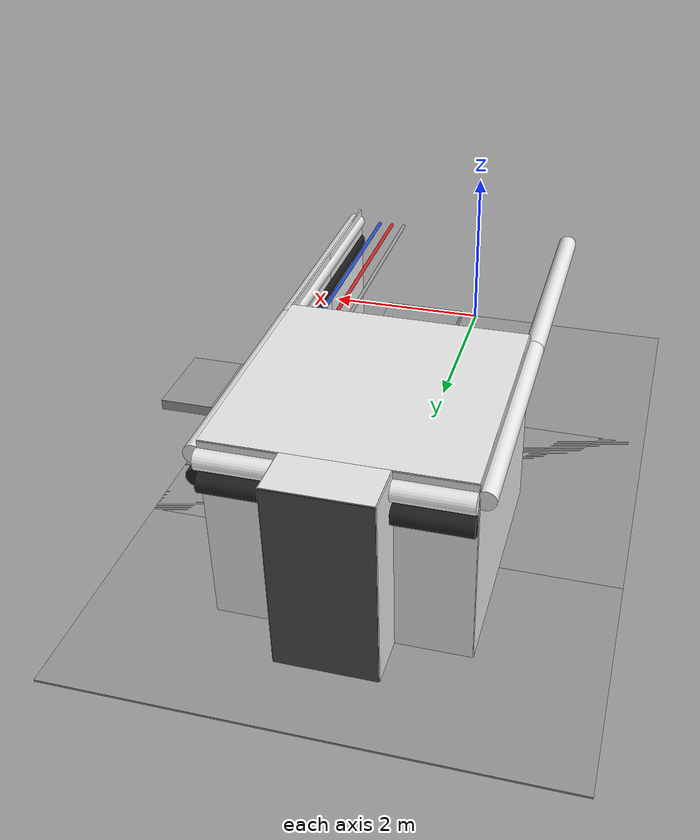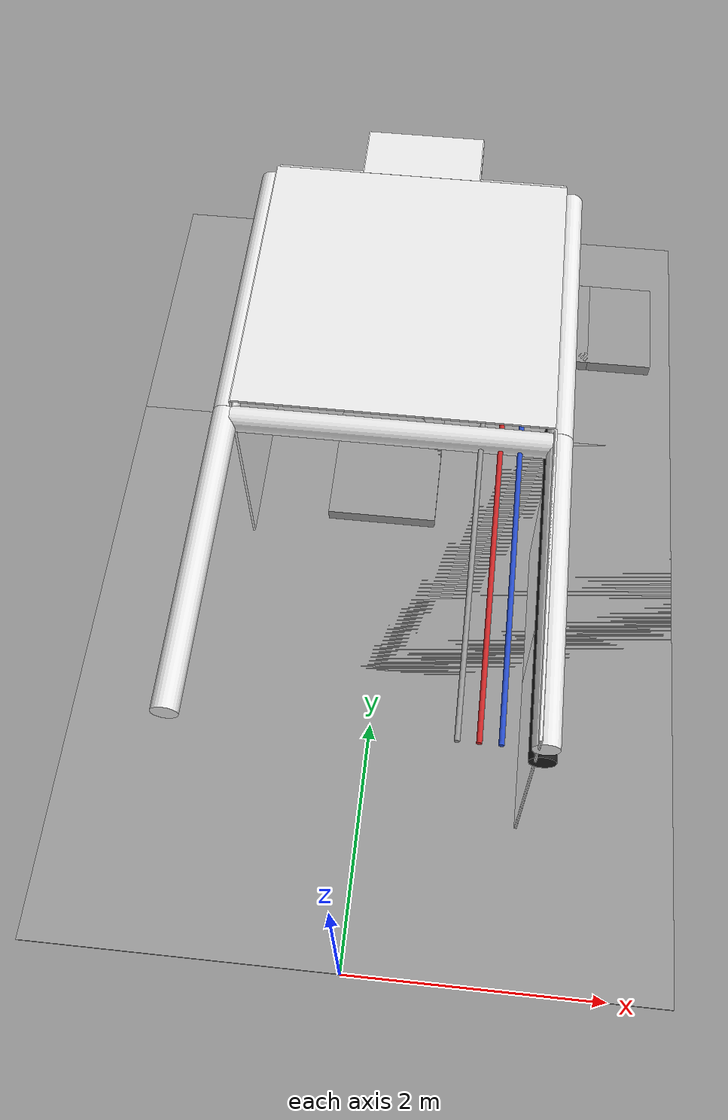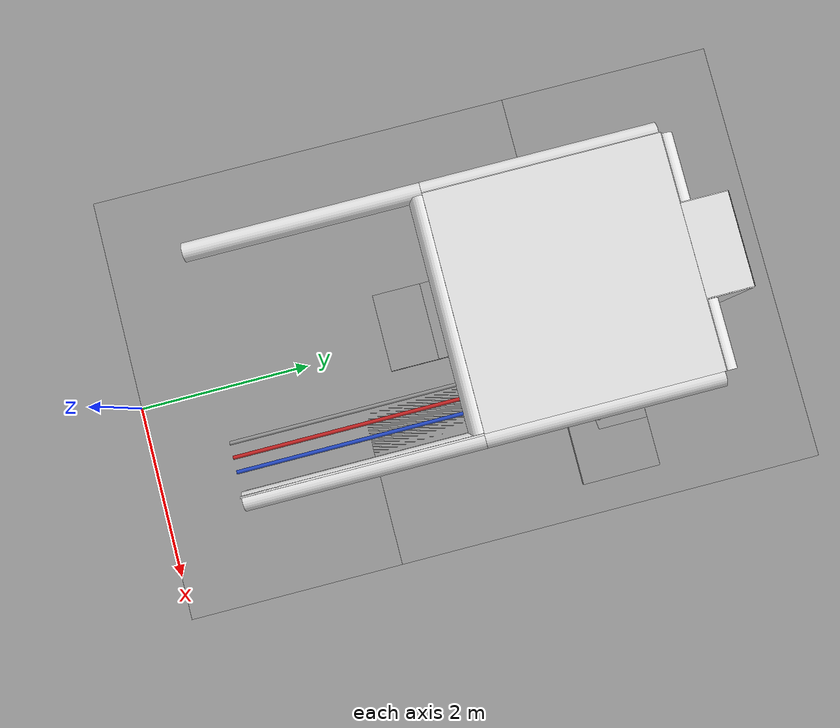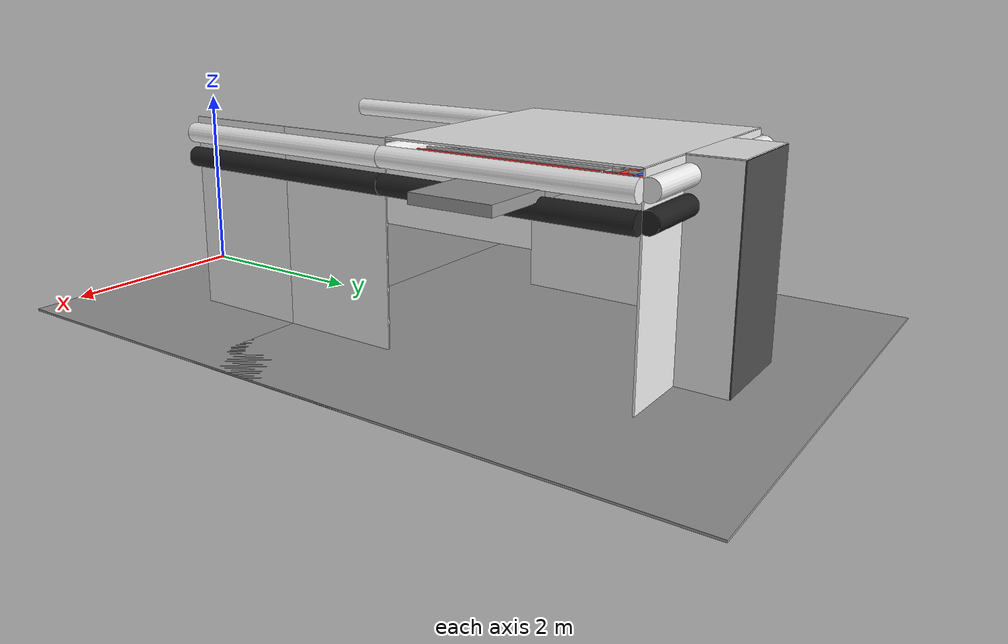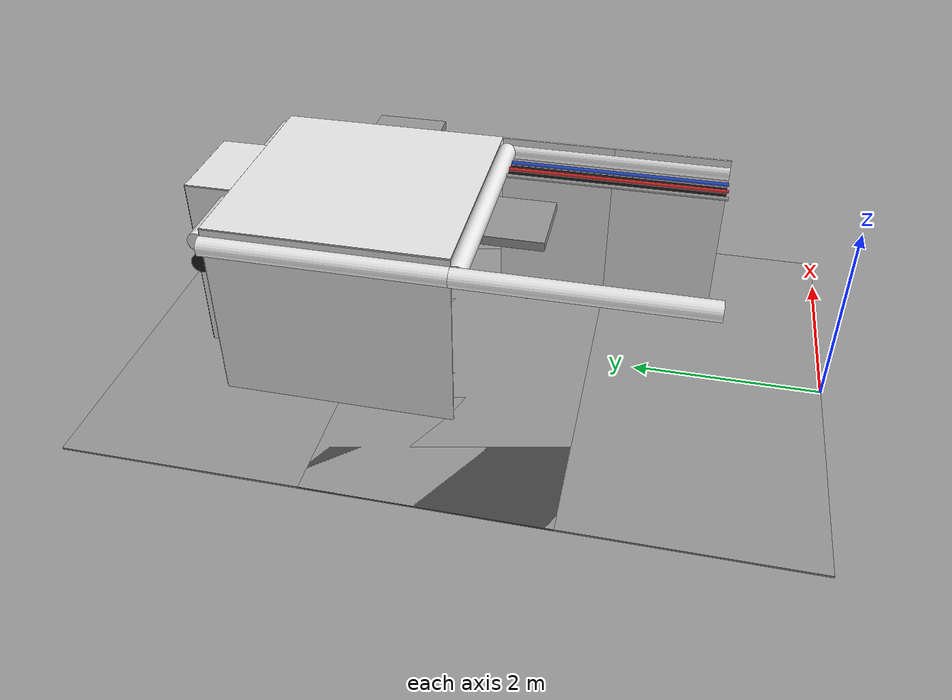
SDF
<sdf version="1.6">
 <world name="default">
  <model name="wall_right_0_1_0_1">
   <static>1</static>
   <pose>1.25 2.5 1.0 0.0 0.0 1.57</pose>
   <link name="link">
    <collision name="collision"><geometry><box><size>2.5 0.02 2.0</size></box></geometry></collision>
    <visual name="visual">
     <material>
      <script><name>Gazebo/White</name><uri>file://media/materials/scripts/gazebo.material</uri></script>
     </material>
     <geometry><box><size>2.5 0.02 2.0</size></box></geometry>
    </visual>
   </link>
  </model>
  <model name="ceiling_1_0_1_2_1">
   <pose>0.0 3.5 1.7 0.0 0.0 0.0</pose>
   <link name="link_1">
    <visual name="visual">
     <geometry><box><size>0.8 1 0.1</size></box></geometry>
     <material>
      <script><uri>file://media/materials/scripts/gazebo.material</uri><name>Gazebo/Grey</name></script>
     </material>
    </visual>
    <collision name="collision"><geometry><box><size>0.8 1 0.1</size></box></geometry></collision>
   </link>
   <static>1</static>
  </model>
  <model name="white_pipe_left_0_1_0_1">
   <static>1</static>
   <pose>0.0 2.5 1.84 0.0 0.0 0.0</pose>
   <link name="link_0">
    <visual name="visual">
     <pose>-1.3 0 0 1.57 0 0</pose>
     <geometry><cylinder><radius>0.1</radius><length>2.5</length></cylinder></geometry>
     <material>
      <script><uri>file://media/materials/scripts/gazebo.material</uri><name>Gazebo/White</name></script>
     </material>
    </visual>
    <collision name="collision">
     <pose>-1.3 0 0 1.57 0 0</pose>
     <geometry><cylinder><radius>0.1</radius><length>2.5</length></cylinder></geometry>
    </collision>
   </link>
  </model>
  <model name="white_pipe_right_0_1_0_1">
   <static>1</static>
   <pose>0.0 2.5 1.84 0.0 0.0 0.0</pose>
   <link name="link_0">
    <visual name="visual">
     <pose>1.3 0 0 1.57 0 0</pose>
     <geometry><cylinder><radius>0.1</radius><length>2.5</length></cylinder></geometry>
     <material>
      <script><uri>file://media/materials/scripts/gazebo.material</uri><name>Gazebo/White</name></script>
     </material>
    </visual>
    <collision name="collision">
     <pose>1.3 0 0 1.57 0 0</pose>
     <geometry><cylinder><radius>0.1</radius><length>2.5</length></cylinder></geometry>
    </collision>
   </link>
  </model>
  <model name="black_pipe_right_0_1_0_1">
   <static>1</static>
   <pose>0.0 2.5 1.84 0.0 0.0 0.0</pose>
   <link name="link_0">
    <visual name="visual">
     <pose>1.3 0 -0.25 1.57 0 0</pose>
     <geometry><cylinder><radius>0.1</radius><length>2.5</length></cylinder></geometry>
     <material>
      <script><uri>file://media/materials/scripts/gazebo.material</uri><name>Gazebo/Black</name></script>
     </material>
    </visual>
    <collision name="collision">
     <pose>1.3 0 -0.25 1.57 0 0</pose>
     <geometry><cylinder><radius>0.1</radius><length>2.5</length></cylinder></geometry>
    </collision>
   </link>
  </model>
  <model name="grey_pipe_right_0_1_0_1">
   <static>1</static>
   <pose>0.0 2.5 1.84 0.0 0.0 0.0</pose>
   <link name="link_0">
    <visual name="visual">
     <pose>0.7 0 0 1.57 0 0</pose>
     <geometry><cylinder><radius>0.02</radius><length>2.5</length></cylinder></geometry>
     <material>
      <script><uri>file://media/materials/scripts/gazebo.material</uri><name>Gazebo/Grey</name></script>
     </material>
    </visual>
    <collision name="collision">
     <pose>0.7 0 0 1.57 0 0</pose>
     <geometry><cylinder><radius>0.02</radius><length>2.5</length></cylinder></geometry>
    </collision>
   </link>
  </model>
  <model name="red_pipe_right_0_1_0_1">
   <static>1</static>
   <pose>0.0 2.5 1.84 0.0 0.0 0.0</pose>
   <link name="link_0">
    <visual name="visual">
     <pose>0.85 0 0 1.57 0 0</pose>
     <geometry><cylinder><radius>0.02</radius><length>2.5</length></cylinder></geometry>
     <material>
      <script><uri>file://media/materials/scripts/gazebo.material</uri><name>Gazebo/Red</name></script>
     </material>
    </visual>
    <collision name="collision">
     <pose>0.85 0 0 1.57 0 0</pose>
     <geometry><cylinder><radius>0.02</radius><length>2.5</length></cylinder></geometry>
    </collision>
   </link>
  </model>
  <model name="blue_pipe_right_0_1_0_1">
   <static>1</static>
   <pose>0.0 2.5 1.84 0.0 0.0 0.0</pose>
   <link name="link_0">
    <visual name="visual">
     <pose>1 0 0 1.57 0 0</pose>
     <geometry><cylinder><radius>0.02</radius><length>2.5</length></cylinder></geometry>
     <material>
      <script><uri>file://media/materials/scripts/gazebo.material</uri><name>Gazebo/Blue</name></script>
     </material>
    </visual>
    <collision name="collision">
     <pose>1 0 0 1.57 0 0</pose>
     <geometry><cylinder><radius>0.02</radius><length>2.5</length></cylinder></geometry>
    </collision>
   </link>
  </model>
  <model name="wall_bottom_0_1_0_1">
   <static>1</static>
   <pose>0.0 2.5 0.0 0.0 0.0 0.0</pose>
   <link name="link">
    <collision name="collision"><geometry><box><size>5.0 5.0 0.02</size></box></geometry></collision>
    <visual name="visual">
     <material>
      <script><name>Gazebo/Grey</name><uri>file://media/materials/scripts/gazebo.material</uri></script>
     </material>
     <geometry><box><size>5.0 5.0 0.02</size></box></geometry>
    </visual>
   </link>
  </model>
  <model name="wall_left_0_2_0_2">
   <static>1</static>
   <pose>-1.25 5.0 1.0 0.0 0.0 1.57</pose>
   <link name="link">
    <collision name="collision"><geometry><box><size>2.5 0.02 2.0</size></box></geometry></collision>
    <visual name="visual">
     <material>
      <script><name>Gazebo/White</name><uri>file://media/materials/scripts/gazebo.material</uri></script>
     </material>
     <geometry><box><size>2.5 0.02 2.0</size></box></geometry>
    </visual>
   </link>
  </model>
  <model name="wall_top_0_2_0_2">
   <static>1</static>
   <pose>0.0 5.0 2.0 1.57 0.0 0.0</pose>
   <link name="link">
    <collision name="collision"><geometry><box><size>2.5 0.02 2.5</size></box></geometry></collision>
    <visual name="visual">
     <material>
      <script><name>Gazebo/White</name><uri>file://media/materials/scripts/gazebo.material</uri></script>
     </material>
     <geometry><box><size>2.5 0.02 2.5</size></box></geometry>
    </visual>
   </link>
  </model>
  <model name="ceiling_1_0_2_0_2">
   <pose>0.0 4.0 1.7 0.0 0.0 0.0</pose>
   <link name="link_1">
    <visual name="visual">
     <geometry><box><size>0.8 1 0.1</size></box></geometry>
     <material>
      <script><uri>file://media/materials/scripts/gazebo.material</uri><name>Gazebo/Grey</name></script>
     </material>
    </visual>
    <collision name="collision"><geometry><box><size>0.8 1 0.1</size></box></geometry></collision>
   </link>
   <static>1</static>
  </model>
  <model name="ceiling_1_0_2_1_2">
   <pose>1.0 5.0 1.7 0.0 0.0 1.57</pose>
   <link name="link_1">
    <visual name="visual">
     <geometry><box><size>0.8 1 0.1</size></box></geometry>
     <material>
      <script><uri>file://media/materials/scripts/gazebo.material</uri><name>Gazebo/Grey</name></script>
     </material>
    </visual>
    <collision name="collision"><geometry><box><size>0.8 1 0.1</size></box></geometry></collision>
   </link>
   <static>1</static>
  </model>
  <model name="white_pipe_left_0_2_0_2">
   <static>1</static>
   <pose>0.0 5.0 1.84 0.0 0.0 0.0</pose>
   <link name="link_0">
    <visual name="visual">
     <pose>-1.3 0 0 1.57 0 0</pose>
     <geometry><cylinder><radius>0.1</radius><length>2.5</length></cylinder></geometry>
     <material>
      <script><uri>file://media/materials/scripts/gazebo.material</uri><name>Gazebo/White</name></script>
     </material>
    </visual>
    <collision name="collision">
     <pose>-1.3 0 0 1.57 0 0</pose>
     <geometry><cylinder><radius>0.1</radius><length>2.5</length></cylinder></geometry>
    </collision>
   </link>
  </model>
  <model name="white_pipe_right_0_2_0_2">
   <static>1</static>
   <pose>0.0 5.0 1.84 0.0 0.0 0.0</pose>
   <link name="link_0">
    <visual name="visual">
     <pose>1.3 0 0 1.57 0 0</pose>
     <geometry><cylinder><radius>0.1</radius><length>2.5</length></cylinder></geometry>
     <material>
      <script><uri>file://media/materials/scripts/gazebo.material</uri><name>Gazebo/White</name></script>
     </material>
    </visual>
    <collision name="collision">
     <pose>1.3 0 0 1.57 0 0</pose>
     <geometry><cylinder><radius>0.1</radius><length>2.5</length></cylinder></geometry>
    </collision>
   </link>
  </model>
  <model name="black_pipe_right_0_2_0_2">
   <static>1</static>
   <pose>0.0 5.0 1.84 0.0 0.0 0.0</pose>
   <link name="link_0">
    <visual name="visual">
     <pose>1.3 0 -0.25 1.57 0 0</pose>
     <geometry><cylinder><radius>0.1</radius><length>2.5</length></cylinder></geometry>
     <material>
      <script><uri>file://media/materials/scripts/gazebo.material</uri><name>Gazebo/Black</name></script>
     </material>
    </visual>
    <collision name="collision">
     <pose>1.3 0 -0.25 1.57 0 0</pose>
     <geometry><cylinder><radius>0.1</radius><length>2.5</length></cylinder></geometry>
    </collision>
   </link>
  </model>
  <model name="grey_pipe_right_0_2_0_2">
   <static>1</static>
   <pose>0.0 5.0 1.84 0.0 0.0 0.0</pose>
   <link name="link_0">
    <visual name="visual">
     <pose>0.7 0 0 1.57 0 0</pose>
     <geometry><cylinder><radius>0.02</radius><length>2.5</length></cylinder></geometry>
     <material>
      <script><uri>file://media/materials/scripts/gazebo.material</uri><name>Gazebo/Grey</name></script>
     </material>
    </visual>
    <collision name="collision">
     <pose>0.7 0 0 1.57 0 0</pose>
     <geometry><cylinder><radius>0.02</radius><length>2.5</length></cylinder></geometry>
    </collision>
   </link>
  </model>
  <model name="red_pipe_right_0_2_0_2">
   <static>1</static>
   <pose>0.0 5.0 1.84 0.0 0.0 0.0</pose>
   <link name="link_0">
    <visual name="visual">
     <pose>0.85 0 0 1.57 0 0</pose>
     <geometry><cylinder><radius>0.02</radius><length>2.5</length></cylinder></geometry>
     <material>
      <script><uri>file://media/materials/scripts/gazebo.material</uri><name>Gazebo/Red</name></script>
     </material>
    </visual>
    <collision name="collision">
     <pose>0.85 0 0 1.57 0 0</pose>
     <geometry><cylinder><radius>0.02</radius><length>2.5</length></cylinder></geometry>
    </collision>
   </link>
  </model>
  <model name="blue_pipe_right_0_2_0_2">
   <static>1</static>
   <pose>0.0 5.0 1.84 0.0 0.0 0.0</pose>
   <link name="link_0">
    <visual name="visual">
     <pose>1 0 0 1.57 0 0</pose>
     <geometry><cylinder><radius>0.02</radius><length>2.5</length></cylinder></geometry>
     <material>
      <script><uri>file://media/materials/scripts/gazebo.material</uri><name>Gazebo/Blue</name></script>
     </material>
    </visual>
    <collision name="collision">
     <pose>1 0 0 1.57 0 0</pose>
     <geometry><cylinder><radius>0.02</radius><length>2.5</length></cylinder></geometry>
    </collision>
   </link>
  </model>
  <model name="white_pipe_left_1_0_2_0_2">
   <static>1</static>
   <pose>0.0 5.0 1.84 0.0 0.0 1.57</pose>
   <link name="link_0">
    <visual name="visual">
     <pose>-1.3 0 0 1.57 0 0</pose>
     <geometry><cylinder><radius>0.1</radius><length>2.5</length></cylinder></geometry>
     <material>
      <script><uri>file://media/materials/scripts/gazebo.material</uri><name>Gazebo/White</name></script>
     </material>
    </visual>
    <collision name="collision">
     <pose>-1.3 0 0 1.57 0 0</pose>
     <geometry><cylinder><radius>0.1</radius><length>2.5</length></cylinder></geometry>
    </collision>
   </link>
  </model>
  <model name="white_pipe_right_1_0_2_0_2">
   <static>1</static>
   <pose>0.0 5.0 1.84 0.0 0.0 1.57</pose>
   <link name="link_0">
    <visual name="visual">
     <pose>1.3 0 0 1.57 0 0</pose>
     <geometry><cylinder><radius>0.1</radius><length>2.5</length></cylinder></geometry>
     <material>
      <script><uri>file://media/materials/scripts/gazebo.material</uri><name>Gazebo/White</name></script>
     </material>
    </visual>
    <collision name="collision">
     <pose>1.3 0 0 1.57 0 0</pose>
     <geometry><cylinder><radius>0.1</radius><length>2.5</length></cylinder></geometry>
    </collision>
   </link>
  </model>
  <model name="black_pipe_right_1_0_2_0_2">
   <static>1</static>
   <pose>0.0 5.0 1.84 0.0 0.0 1.57</pose>
   <link name="link_0">
    <visual name="visual">
     <pose>1.3 0 -0.25 1.57 0 0</pose>
     <geometry><cylinder><radius>0.1</radius><length>2.5</length></cylinder></geometry>
     <material>
      <script><uri>file://media/materials/scripts/gazebo.material</uri><name>Gazebo/Black</name></script>
     </material>
    </visual>
    <collision name="collision">
     <pose>1.3 0 -0.25 1.57 0 0</pose>
     <geometry><cylinder><radius>0.1</radius><length>2.5</length></cylinder></geometry>
    </collision>
   </link>
  </model>
  <model name="grey_pipe_right_1_0_2_0_2">
   <static>1</static>
   <pose>0.0 5.0 1.84 0.0 0.0 1.57</pose>
   <link name="link_0">
    <visual name="visual">
     <pose>0.7 0 0 1.57 0 0</pose>
     <geometry><cylinder><radius>0.02</radius><length>2.5</length></cylinder></geometry>
     <material>
      <script><uri>file://media/materials/scripts/gazebo.material</uri><name>Gazebo/Grey</name></script>
     </material>
    </visual>
    <collision name="collision">
     <pose>0.7 0 0 1.57 0 0</pose>
     <geometry><cylinder><radius>0.02</radius><length>2.5</length></cylinder></geometry>
    </collision>
   </link>
  </model>
  <model name="red_pipe_right_1_0_2_0_2">
   <static>1</static>
   <pose>0.0 5.0 1.84 0.0 0.0 1.57</pose>
   <link name="link_0">
    <visual name="visual">
     <pose>0.85 0 0 1.57 0 0</pose>
     <geometry><cylinder><radius>0.02</radius><length>2.5</length></cylinder></geometry>
     <material>
      <script><uri>file://media/materials/scripts/gazebo.material</uri><name>Gazebo/Red</name></script>
     </material>
    </visual>
    <collision name="collision">
     <pose>0.85 0 0 1.57 0 0</pose>
     <geometry><cylinder><radius>0.02</radius><length>2.5</length></cylinder></geometry>
    </collision>
   </link>
  </model>
  <model name="blue_pipe_right_1_0_2_0_2">
   <static>1</static>
   <pose>0.0 5.0 1.84 0.0 0.0 1.57</pose>
   <link name="link_0">
    <visual name="visual">
     <pose>1 0 0 1.57 0 0</pose>
     <geometry><cylinder><radius>0.02</radius><length>2.5</length></cylinder></geometry>
     <material>
      <script><uri>file://media/materials/scripts/gazebo.material</uri><name>Gazebo/Blue</name></script>
     </material>
    </visual>
    <collision name="collision">
     <pose>1 0 0 1.57 0 0</pose>
     <geometry><cylinder><radius>0.02</radius><length>2.5</length></cylinder></geometry>
    </collision>
   </link>
  </model>
  <model name="wall_front_front_left_0_2_0_2">
   <static>1</static>
   <pose>0.875 6.25 1.0 0.0 0.0 0.0</pose>
   <link name="link">
    <collision name="collision"><geometry><box><size>0.75 0.02 2.0</size></box></geometry></collision>
    <visual name="visual">
     <material>
      <script><name>Gazebo/White</name><uri>file://media/materials/scripts/gazebo.material</uri></script>
     </material>
     <geometry><box><size>0.75 0.02 2.0</size></box></geometry>
    </visual>
   </link>
  </model>
  <model name="wall_front_front_right_0_2_0_2">
   <static>1</static>
   <pose>-0.875 6.25 1.0 0.0 0.0 0.0</pose>
   <link name="link">
    <collision name="collision"><geometry><box><size>0.75 0.02 2.0</size></box></geometry></collision>
    <visual name="visual">
     <material>
      <script><name>Gazebo/White</name><uri>file://media/materials/scripts/gazebo.material</uri></script>
     </material>
     <geometry><box><size>0.75 0.02 2.0</size></box></geometry>
    </visual>
   </link>
  </model>
  <model name="wall_front_front_up_0_2_0_2">
   <static>1</static>
   <pose>0.0 6.25 2.0 0.0 0.0 0.0</pose>
   <link name="link">
    <collision name="collision"><geometry><box><size>1.0 0.02 0.001</size></box></geometry></collision>
    <visual name="visual">
     <material>
      <script><name>Gazebo/White</name><uri>file://media/materials/scripts/gazebo.material</uri></script>
     </material>
     <geometry><box><size>1.0 0.02 0.001</size></box></geometry>
    </visual>
   </link>
  </model>
  <model name="wall_front_inside_back_0_2_0_2">
   <static>1</static>
   <pose>0.0 6.75 1.0 0.0 0.0 0.0</pose>
   <link name="link">
    <collision name="collision"><geometry><box><size>1 0.02 2</size></box></geometry></collision>
    <visual name="visual">
     <material>
      <script><name>Gazebo/DarkGrey</name><uri>file://media/materials/scripts/gazebo.material</uri></script>
     </material>
     <geometry><box><size>1 0.02 2</size></box></geometry>
    </visual>
   </link>
  </model>
  <model name="wall_front_inside_left_0_2_0_2">
   <static>1</static>
   <pose>-0.5 6.5 1.0 0.0 0.0 1.57</pose>
   <link name="link">
    <collision name="collision"><geometry><box><size>0.5 0.02 2</size></box></geometry></collision>
    <visual name="visual">
     <material>
      <script><name>Gazebo/White</name><uri>file://media/materials/scripts/gazebo.material</uri></script>
     </material>
     <geometry><box><size>0.5 0.02 2</size></box></geometry>
    </visual>
   </link>
  </model>
  <model name="wall_front_inside_right_0_2_0_2">
   <static>1</static>
   <pose>0.5 6.5 1.0 0.0 0.0 1.57</pose>
   <link name="link">
    <collision name="collision"><geometry><box><size>0.5 0.02 2</size></box></geometry></collision>
    <visual name="visual">
     <material>
      <script><name>Gazebo/White</name><uri>file://media/materials/scripts/gazebo.material</uri></script>
     </material>
     <geometry><box><size>0.5 0.02 2</size></box></geometry>
    </visual>
   </link>
  </model>
  <model name="wall_front_inside_top_0_2_0_2">
   <static>1</static>
   <pose>0.0 6.5 2.0 1.57 0.0 0.0</pose>
   <link name="link">
    <collision name="collision"><geometry><box><size>1 0.02 0.5</size></box></geometry></collision>
    <visual name="visual">
     <material>
      <script><name>Gazebo/White</name><uri>file://media/materials/scripts/gazebo.material</uri></script>
     </material>
     <geometry><box><size>1 0.02 0.5</size></box></geometry>
    </visual>
   </link>
  </model>
  <model name="wall_bottom_0_2_0_2">
   <static>1</static>
   <pose>0.0 5.0 0.0 0.0 0.0 0.0</pose>
   <link name="link">
    <collision name="collision"><geometry><box><size>5.0 5.0 0.02</size></box></geometry></collision>
    <visual name="visual">
     <material>
      <script><name>Gazebo/Grey</name><uri>file://media/materials/scripts/gazebo.material</uri></script>
     </material>
     <geometry><box><size>5.0 5.0 0.02</size></box></geometry>
    </visual>
   </link>
  </model>
  <model name="ceiling_1_1_2_0_2">
   <pose>1.5 5.0 1.7 0.0 0.0 -1.57</pose>
   <link name="link_1">
    <visual name="visual">
     <geometry><box><size>0.8 1 0.1</size></box></geometry>
     <material>
      <script><uri>file://media/materials/scripts/gazebo.material</uri><name>Gazebo/Grey</name></script>
     </material>
    </visual>
    <collision name="collision"><geometry><box><size>0.8 1 0.1</size></box></geometry></collision>
   </link>
   <static>1</static>
  </model>
  <model name="wall_right_1_1_0_1">
   <static>1</static>
   <pose>1.25 2.5 1.0 0.0 0.0 4.71</pose>
   <link name="link">
    <collision name="collision"><geometry><box><size>2.5 0.02 2.0</size></box></geometry></collision>
    <visual name="visual">
     <material>
      <script><name>Gazebo/White</name><uri>file://media/materials/scripts/gazebo.material</uri></script>
     </material>
     <geometry><box><size>2.5 0.02 2.0</size></box></geometry>
    </visual>
   </link>
  </model>
 </world>
</sdf>
